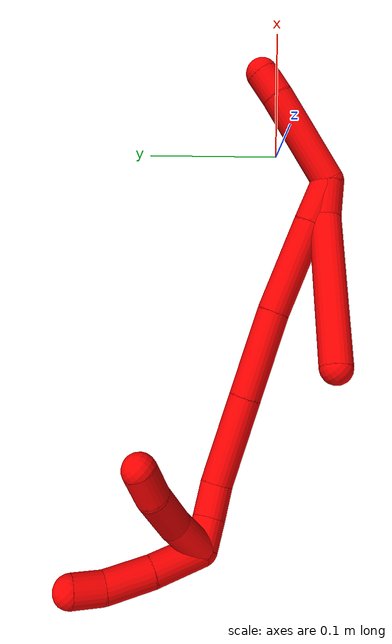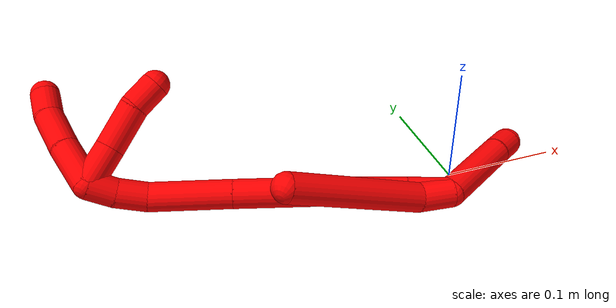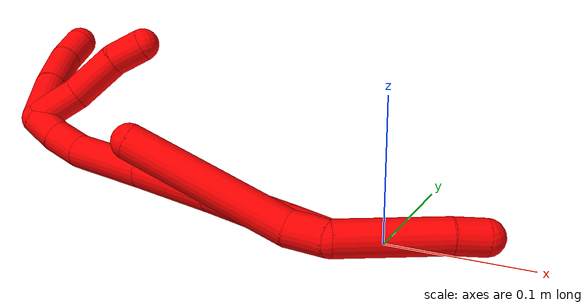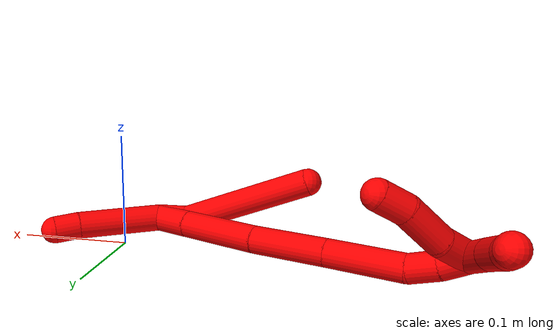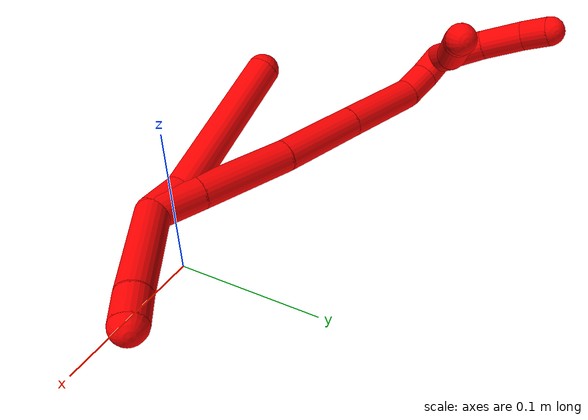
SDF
<sdf version="1.7">
 <world name="default">
  <model name="2">
   <static>0</static>
   <link name="2">
    <collision name="collision-cylinder-e_1_2_8">
     <pose>-0.011062 -0.001858 -0.009084 2.9398 -0.873186 -2.71429</pose>
     <geometry><cylinder><radius>0.0125</radius><length>0.028868</length></cylinder></geometry>
     <surface>
      <friction><ode><mu>1.16</mu><mu2>1.16</mu2><slip1>0</slip1><slip2>0</slip2></ode></friction>
      <contact><ode><kp>1e+06</kp><kd>1</kd><max_vel>0</max_vel><min_depth>0.001</min_depth></ode></contact>
     </surface>
    </collision>
    <visual name="visual-cylinder-e_1_2_8">
     <pose>-0.011062 -0.001858 -0.009084 2.9398 -0.873186 -2.71429</pose>
     <geometry><cylinder><radius>0.0125</radius><length>0.028868</length></cylinder></geometry>
     <material><ambient>1 0 0 1</ambient></material>
    </visual>
    <collision name="collision-cylinder-e_2_8_6">
     <pose>-0.062651 -0.030553 -0.054302 2.50278 -0.733044 -1.71924</pose>
     <geometry><cylinder><radius>0.0125</radius><length>0.121132</length></cylinder></geometry>
     <surface>
      <friction><ode><mu>1.16</mu><mu2>1.16</mu2><slip1>0</slip1><slip2>0</slip2></ode></friction>
      <contact><ode><kp>1e+06</kp><kd>1</kd><max_vel>0</max_vel><min_depth>0.001</min_depth></ode></contact>
     </surface>
    </collision>
    <visual name="visual-cylinder-e_2_8_6">
     <pose>-0.062651 -0.030553 -0.054302 2.50278 -0.733044 -1.71924</pose>
     <geometry><cylinder><radius>0.0125</radius><length>0.121132</length></cylinder></geometry>
     <material><ambient>1 0 0 1</ambient></material>
    </visual>
    <collision name="collision-cylinder-e_1_2_9">
     <pose>0.00976 0.007328 0.036644 -0.197369 0.255463 -0.02543</pose>
     <geometry><cylinder><radius>0.0125</radius><length>0.077247</length></cylinder></geometry>
     <surface>
      <friction><ode><mu>1.16</mu><mu2>1.16</mu2><slip1>0</slip1><slip2>0</slip2></ode></friction>
      <contact><ode><kp>1e+06</kp><kd>1</kd><max_vel>0</max_vel><min_depth>0.001</min_depth></ode></contact>
     </surface>
    </collision>
    <visual name="visual-cylinder-e_1_2_9">
     <pose>0.00976 0.007328 0.036644 -0.197369 0.255463 -0.02543</pose>
     <geometry><cylinder><radius>0.0125</radius><length>0.077247</length></cylinder></geometry>
     <material><ambient>1 0 0 1</ambient></material>
    </visual>
    <collision name="collision-cylinder-e_2_9_5">
     <pose>0.022073 0.017763 0.083931 -0.284122 0.226321 -0.032505</pose>
     <geometry><cylinder><radius>0.0125</radius><length>0.022753</length></cylinder></geometry>
     <surface>
      <friction><ode><mu>1.16</mu><mu2>1.16</mu2><slip1>0</slip1><slip2>0</slip2></ode></friction>
      <contact><ode><kp>1e+06</kp><kd>1</kd><max_vel>0</max_vel><min_depth>0.001</min_depth></ode></contact>
     </surface>
    </collision>
    <visual name="visual-cylinder-e_2_9_5">
     <pose>0.022073 0.017763 0.083931 -0.284122 0.226321 -0.032505</pose>
     <geometry><cylinder><radius>0.0125</radius><length>0.022753</length></cylinder></geometry>
     <material><ambient>1 0 0 1</ambient></material>
    </visual>
    <collision name="collision-cylinder-e_1_2_10">
     <pose>-0.016697 -0.00042 -0.006704 3.07909 -1.1883 -3.04911</pose>
     <geometry><cylinder><radius>0.0125</radius><length>0.035995</length></cylinder></geometry>
     <surface>
      <friction><ode><mu>1.16</mu><mu2>1.16</mu2><slip1>0</slip1><slip2>0</slip2></ode></friction>
      <contact><ode><kp>1e+06</kp><kd>1</kd><max_vel>0</max_vel><min_depth>0.001</min_depth></ode></contact>
     </surface>
    </collision>
    <visual name="visual-cylinder-e_1_2_10">
     <pose>-0.016697 -0.00042 -0.006704 3.07909 -1.1883 -3.04911</pose>
     <geometry><cylinder><radius>0.0125</radius><length>0.035995</length></cylinder></geometry>
     <material><ambient>1 0 0 1</ambient></material>
    </visual>
    <collision name="collision-cylinder-e_2_10_11">
     <pose>-0.067707 -0.001599 -0.028014 3.0896 -1.16789 -3.06294</pose>
     <geometry><cylinder><radius>0.0125</radius><length>0.074601</length></cylinder></geometry>
     <surface>
      <friction><ode><mu>1.16</mu><mu2>1.16</mu2><slip1>0</slip1><slip2>0</slip2></ode></friction>
      <contact><ode><kp>1e+06</kp><kd>1</kd><max_vel>0</max_vel><min_depth>0.001</min_depth></ode></contact>
     </surface>
    </collision>
    <visual name="visual-cylinder-e_2_10_11">
     <pose>-0.067707 -0.001599 -0.028014 3.0896 -1.16789 -3.06294</pose>
     <geometry><cylinder><radius>0.0125</radius><length>0.074601</length></cylinder></geometry>
     <material><ambient>1 0 0 1</ambient></material>
    </visual>
    <collision name="collision-cylinder-e_3_11_12">
     <pose>-0.133025 -0.004132 -0.058188 3.02818 -1.10286 -2.95753</pose>
     <geometry><cylinder><radius>0.0125</radius><length>0.069477</length></cylinder></geometry>
     <surface>
      <friction><ode><mu>1.16</mu><mu2>1.16</mu2><slip1>0</slip1><slip2>0</slip2></ode></friction>
      <contact><ode><kp>1e+06</kp><kd>1</kd><max_vel>0</max_vel><min_depth>0.001</min_depth></ode></contact>
     </surface>
    </collision>
    <visual name="visual-cylinder-e_3_11_12">
     <pose>-0.133025 -0.004132 -0.058188 3.02818 -1.10286 -2.95753</pose>
     <geometry><cylinder><radius>0.0125</radius><length>0.069477</length></cylinder></geometry>
     <material><ambient>1 0 0 1</ambient></material>
    </visual>
    <collision name="collision-cylinder-e_4_12_13">
     <pose>-0.195188 -0.007327 -0.089573 3.05194 -1.09945 -2.99543</pose>
     <geometry><cylinder><radius>0.0125</radius><length>0.069943</length></cylinder></geometry>
     <surface>
      <friction><ode><mu>1.16</mu><mu2>1.16</mu2><slip1>0</slip1><slip2>0</slip2></ode></friction>
      <contact><ode><kp>1e+06</kp><kd>1</kd><max_vel>0</max_vel><min_depth>0.001</min_depth></ode></contact>
     </surface>
    </collision>
    <visual name="visual-cylinder-e_4_12_13">
     <pose>-0.195188 -0.007327 -0.089573 3.05194 -1.09945 -2.99543</pose>
     <geometry><cylinder><radius>0.0125</radius><length>0.069943</length></cylinder></geometry>
     <material><ambient>1 0 0 1</ambient></material>
    </visual>
    <collision name="collision-cylinder-e_5_13_14">
     <pose>-0.237398 -0.012987 -0.111374 2.52548 -0.984952 -2.07109</pose>
     <geometry><cylinder><radius>0.0125</radius><length>0.026526</length></cylinder></geometry>
     <surface>
      <friction><ode><mu>1.16</mu><mu2>1.16</mu2><slip1>0</slip1><slip2>0</slip2></ode></friction>
      <contact><ode><kp>1e+06</kp><kd>1</kd><max_vel>0</max_vel><min_depth>0.001</min_depth></ode></contact>
     </surface>
    </collision>
    <visual name="visual-cylinder-e_5_13_14">
     <pose>-0.237398 -0.012987 -0.111374 2.52548 -0.984952 -2.07109</pose>
     <geometry><cylinder><radius>0.0125</radius><length>0.026526</length></cylinder></geometry>
     <material><ambient>1 0 0 1</ambient></material>
    </visual>
    <collision name="collision-cylinder-e_6_14_1">
     <pose>-0.257897 -0.022744 -0.121582 2.2239 -0.936576 -1.5944</pose>
     <geometry><cylinder><radius>0.0125</radius><length>0.023457</length></cylinder></geometry>
     <surface>
      <friction><ode><mu>1.16</mu><mu2>1.16</mu2><slip1>0</slip1><slip2>0</slip2></ode></friction>
      <contact><ode><kp>1e+06</kp><kd>1</kd><max_vel>0</max_vel><min_depth>0.001</min_depth></ode></contact>
     </surface>
    </collision>
    <visual name="visual-cylinder-e_6_14_1">
     <pose>-0.257897 -0.022744 -0.121582 2.2239 -0.936576 -1.5944</pose>
     <geometry><cylinder><radius>0.0125</radius><length>0.023457</length></cylinder></geometry>
     <material><ambient>1 0 0 1</ambient></material>
    </visual>
    <collision name="collision-cylinder-e_1_1_15">
     <pose>-0.284138 -0.033649 -0.115886 0.497413 -0.979062 -0.268984</pose>
     <geometry><cylinder><radius>0.0125</radius><length>0.040468</length></cylinder></geometry>
     <surface>
      <friction><ode><mu>1.16</mu><mu2>1.16</mu2><slip1>0</slip1><slip2>0</slip2></ode></friction>
      <contact><ode><kp>1e+06</kp><kd>1</kd><max_vel>0</max_vel><min_depth>0.001</min_depth></ode></contact>
     </surface>
    </collision>
    <visual name="visual-cylinder-e_1_1_15">
     <pose>-0.284138 -0.033649 -0.115886 0.497413 -0.979062 -0.268984</pose>
     <geometry><cylinder><radius>0.0125</radius><length>0.040468</length></cylinder></geometry>
     <material><ambient>1 0 0 1</ambient></material>
    </visual>
    <collision name="collision-cylinder-e_2_15_16">
     <pose>-0.315262 -0.043006 -0.095856 0.374281 -0.922156 -0.187589</pose>
     <geometry><cylinder><radius>0.0125</radius><length>0.035965</length></cylinder></geometry>
     <surface>
      <friction><ode><mu>1.16</mu><mu2>1.16</mu2><slip1>0</slip1><slip2>0</slip2></ode></friction>
      <contact><ode><kp>1e+06</kp><kd>1</kd><max_vel>0</max_vel><min_depth>0.001</min_depth></ode></contact>
     </surface>
    </collision>
    <visual name="visual-cylinder-e_2_15_16">
     <pose>-0.315262 -0.043006 -0.095856 0.374281 -0.922156 -0.187589</pose>
     <geometry><cylinder><radius>0.0125</radius><length>0.035965</length></cylinder></geometry>
     <material><ambient>1 0 0 1</ambient></material>
    </visual>
    <collision name="collision-cylinder-e_3_16_4">
     <pose>-0.337239 -0.049529 -0.07715 0.288551 -0.706154 -0.106979</pose>
     <geometry><cylinder><radius>0.0125</radius><length>0.023568</length></cylinder></geometry>
     <surface>
      <friction><ode><mu>1.16</mu><mu2>1.16</mu2><slip1>0</slip1><slip2>0</slip2></ode></friction>
      <contact><ode><kp>1e+06</kp><kd>1</kd><max_vel>0</max_vel><min_depth>0.001</min_depth></ode></contact>
     </surface>
    </collision>
    <visual name="visual-cylinder-e_3_16_4">
     <pose>-0.337239 -0.049529 -0.07715 0.288551 -0.706154 -0.106979</pose>
     <geometry><cylinder><radius>0.0125</radius><length>0.023568</length></cylinder></geometry>
     <material><ambient>1 0 0 1</ambient></material>
    </visual>
    <collision name="collision-cylinder-e_1_1_17">
     <pose>-0.266113 -0.033949 -0.109294 0.331663 0.070387 0.011785</pose>
     <geometry><cylinder><radius>0.0125</radius><length>0.035011</length></cylinder></geometry>
     <surface>
      <friction><ode><mu>1.16</mu><mu2>1.16</mu2><slip1>0</slip1><slip2>0</slip2></ode></friction>
      <contact><ode><kp>1e+06</kp><kd>1</kd><max_vel>0</max_vel><min_depth>0.001</min_depth></ode></contact>
     </surface>
    </collision>
    <visual name="visual-cylinder-e_1_1_17">
     <pose>-0.266113 -0.033949 -0.109294 0.331663 0.070387 0.011785</pose>
     <geometry><cylinder><radius>0.0125</radius><length>0.035011</length></cylinder></geometry>
     <material><ambient>1 0 0 1</ambient></material>
    </visual>
    <collision name="collision-cylinder-e_2_17_18">
     <pose>-0.261006 -0.050122 -0.076464 0.571158 0.197221 0.058077</pose>
     <geometry><cylinder><radius>0.0125</radius><length>0.039564</length></cylinder></geometry>
     <surface>
      <friction><ode><mu>1.16</mu><mu2>1.16</mu2><slip1>0</slip1><slip2>0</slip2></ode></friction>
      <contact><ode><kp>1e+06</kp><kd>1</kd><max_vel>0</max_vel><min_depth>0.001</min_depth></ode></contact>
     </surface>
    </collision>
    <visual name="visual-cylinder-e_2_17_18">
     <pose>-0.261006 -0.050122 -0.076464 0.571158 0.197221 0.058077</pose>
     <geometry><cylinder><radius>0.0125</radius><length>0.039564</length></cylinder></geometry>
     <material><ambient>1 0 0 1</ambient></material>
    </visual>
    <collision name="collision-cylinder-e_3_18_3">
     <pose>-0.253019 -0.064763 -0.048855 0.352513 0.329266 0.059162</pose>
     <geometry><cylinder><radius>0.0125</radius><length>0.025425</length></cylinder></geometry>
     <surface>
      <friction><ode><mu>1.16</mu><mu2>1.16</mu2><slip1>0</slip1><slip2>0</slip2></ode></friction>
      <contact><ode><kp>1e+06</kp><kd>1</kd><max_vel>0</max_vel><min_depth>0.001</min_depth></ode></contact>
     </surface>
    </collision>
    <visual name="visual-cylinder-e_3_18_3">
     <pose>-0.253019 -0.064763 -0.048855 0.352513 0.329266 0.059162</pose>
     <geometry><cylinder><radius>0.0125</radius><length>0.025425</length></cylinder></geometry>
     <material><ambient>1 0 0 1</ambient></material>
    </visual>
    <collision name="collision-sphere-3">
     <pose>-0.248909 -0.068916 -0.037565 0 -0 0</pose>
     <geometry><sphere><radius>0.0125</radius></sphere></geometry>
     <surface>
      <friction><ode><mu>1.16</mu><mu2>1.16</mu2><slip1>0</slip1><slip2>0</slip2></ode></friction>
      <contact><ode><kp>1e+06</kp><kd>1</kd><max_vel>0</max_vel><min_depth>0.001</min_depth></ode></contact>
     </surface>
    </collision>
    <visual name="visual-sphere-3">
     <pose>-0.248909 -0.068916 -0.037565 0 -0 0</pose>
     <geometry><sphere><radius>0.0125</radius></sphere></geometry>
     <material><ambient>1 0 0 1</ambient></material>
    </visual>
    <collision name="collision-sphere-10">
     <pose>-0.033394 -0.000839 -0.013409 0 -0 0</pose>
     <geometry><sphere><radius>0.0125</radius></sphere></geometry>
     <surface>
      <friction><ode><mu>1.16</mu><mu2>1.16</mu2><slip1>0</slip1><slip2>0</slip2></ode></friction>
      <contact><ode><kp>1e+06</kp><kd>1</kd><max_vel>0</max_vel><min_depth>0.001</min_depth></ode></contact>
     </surface>
    </collision>
    <visual name="visual-sphere-10">
     <pose>-0.033394 -0.000839 -0.013409 0 -0 0</pose>
     <geometry><sphere><radius>0.0125</radius></sphere></geometry>
     <material><ambient>1 0 0 1</ambient></material>
    </visual>
    <collision name="collision-sphere-5">
     <pose>0.024625 0.020871 0.094573 0 -0 0</pose>
     <geometry><sphere><radius>0.0125</radius></sphere></geometry>
     <surface>
      <friction><ode><mu>1.16</mu><mu2>1.16</mu2><slip1>0</slip1><slip2>0</slip2></ode></friction>
      <contact><ode><kp>1e+06</kp><kd>1</kd><max_vel>0</max_vel><min_depth>0.001</min_depth></ode></contact>
     </surface>
    </collision>
    <visual name="visual-sphere-5">
     <pose>0.024625 0.020871 0.094573 0 -0 0</pose>
     <geometry><sphere><radius>0.0125</radius></sphere></geometry>
     <material><ambient>1 0 0 1</ambient></material>
    </visual>
    <collision name="collision-sphere-6">
     <pose>-0.103178 -0.05739 -0.090435 0 -0 0</pose>
     <geometry><sphere><radius>0.0125</radius></sphere></geometry>
     <surface>
      <friction><ode><mu>1.16</mu><mu2>1.16</mu2><slip1>0</slip1><slip2>0</slip2></ode></friction>
      <contact><ode><kp>1e+06</kp><kd>1</kd><max_vel>0</max_vel><min_depth>0.001</min_depth></ode></contact>
     </surface>
    </collision>
    <visual name="visual-sphere-6">
     <pose>-0.103178 -0.05739 -0.090435 0 -0 0</pose>
     <geometry><sphere><radius>0.0125</radius></sphere></geometry>
     <material><ambient>1 0 0 1</ambient></material>
    </visual>
    <collision name="collision-sphere-9">
     <pose>0.01952 0.014656 0.073289 0 -0 0</pose>
     <geometry><sphere><radius>0.0125</radius></sphere></geometry>
     <surface>
      <friction><ode><mu>1.16</mu><mu2>1.16</mu2><slip1>0</slip1><slip2>0</slip2></ode></friction>
      <contact><ode><kp>1e+06</kp><kd>1</kd><max_vel>0</max_vel><min_depth>0.001</min_depth></ode></contact>
     </surface>
    </collision>
    <visual name="visual-sphere-9">
     <pose>0.01952 0.014656 0.073289 0 -0 0</pose>
     <geometry><sphere><radius>0.0125</radius></sphere></geometry>
     <material><ambient>1 0 0 1</ambient></material>
    </visual>
    <collision name="collision-sphere-2">
     <geometry><sphere><radius>0.0125</radius></sphere></geometry>
     <surface>
      <friction><ode><mu>1.16</mu><mu2>1.16</mu2><slip1>0</slip1><slip2>0</slip2></ode></friction>
      <contact><ode><kp>1e+06</kp><kd>1</kd><max_vel>0</max_vel><min_depth>0.001</min_depth></ode></contact>
     </surface>
    </collision>
    <visual name="visual-sphere-2">
     <geometry><sphere><radius>0.0125</radius></sphere></geometry>
     <material><ambient>1 0 0 1</ambient></material>
    </visual>
    <collision name="collision-sphere-8">
     <pose>-0.022124 -0.003717 -0.018168 0 -0 0</pose>
     <geometry><sphere><radius>0.0125</radius></sphere></geometry>
     <surface>
      <friction><ode><mu>1.16</mu><mu2>1.16</mu2><slip1>0</slip1><slip2>0</slip2></ode></friction>
      <contact><ode><kp>1e+06</kp><kd>1</kd><max_vel>0</max_vel><min_depth>0.001</min_depth></ode></contact>
     </surface>
    </collision>
    <visual name="visual-sphere-8">
     <pose>-0.022124 -0.003717 -0.018168 0 -0 0</pose>
     <geometry><sphere><radius>0.0125</radius></sphere></geometry>
     <material><ambient>1 0 0 1</ambient></material>
    </visual>
    <collision name="collision-sphere-11">
     <pose>-0.102021 -0.002359 -0.04262 0 -0 0</pose>
     <geometry><sphere><radius>0.0125</radius></sphere></geometry>
     <surface>
      <friction><ode><mu>1.16</mu><mu2>1.16</mu2><slip1>0</slip1><slip2>0</slip2></ode></friction>
      <contact><ode><kp>1e+06</kp><kd>1</kd><max_vel>0</max_vel><min_depth>0.001</min_depth></ode></contact>
     </surface>
    </collision>
    <visual name="visual-sphere-11">
     <pose>-0.102021 -0.002359 -0.04262 0 -0 0</pose>
     <geometry><sphere><radius>0.0125</radius></sphere></geometry>
     <material><ambient>1 0 0 1</ambient></material>
    </visual>
    <collision name="collision-sphere-12">
     <pose>-0.16403 -0.005906 -0.073756 0 -0 0</pose>
     <geometry><sphere><radius>0.0125</radius></sphere></geometry>
     <surface>
      <friction><ode><mu>1.16</mu><mu2>1.16</mu2><slip1>0</slip1><slip2>0</slip2></ode></friction>
      <contact><ode><kp>1e+06</kp><kd>1</kd><max_vel>0</max_vel><min_depth>0.001</min_depth></ode></contact>
     </surface>
    </collision>
    <visual name="visual-sphere-12">
     <pose>-0.16403 -0.005906 -0.073756 0 -0 0</pose>
     <geometry><sphere><radius>0.0125</radius></sphere></geometry>
     <material><ambient>1 0 0 1</ambient></material>
    </visual>
    <collision name="collision-sphere-13">
     <pose>-0.226346 -0.008749 -0.105389 0 -0 0</pose>
     <geometry><sphere><radius>0.0125</radius></sphere></geometry>
     <surface>
      <friction><ode><mu>1.16</mu><mu2>1.16</mu2><slip1>0</slip1><slip2>0</slip2></ode></friction>
      <contact><ode><kp>1e+06</kp><kd>1</kd><max_vel>0</max_vel><min_depth>0.001</min_depth></ode></contact>
     </surface>
    </collision>
    <visual name="visual-sphere-13">
     <pose>-0.226346 -0.008749 -0.105389 0 -0 0</pose>
     <geometry><sphere><radius>0.0125</radius></sphere></geometry>
     <material><ambient>1 0 0 1</ambient></material>
    </visual>
    <collision name="collision-sphere-14">
     <pose>-0.248449 -0.017225 -0.117359 0 -0 0</pose>
     <geometry><sphere><radius>0.0125</radius></sphere></geometry>
     <surface>
      <friction><ode><mu>1.16</mu><mu2>1.16</mu2><slip1>0</slip1><slip2>0</slip2></ode></friction>
      <contact><ode><kp>1e+06</kp><kd>1</kd><max_vel>0</max_vel><min_depth>0.001</min_depth></ode></contact>
     </surface>
    </collision>
    <visual name="visual-sphere-14">
     <pose>-0.248449 -0.017225 -0.117359 0 -0 0</pose>
     <geometry><sphere><radius>0.0125</radius></sphere></geometry>
     <material><ambient>1 0 0 1</ambient></material>
    </visual>
    <collision name="collision-sphere-1">
     <pose>-0.267344 -0.028264 -0.125805 0 -0 0</pose>
     <geometry><sphere><radius>0.0125</radius></sphere></geometry>
     <surface>
      <friction><ode><mu>1.16</mu><mu2>1.16</mu2><slip1>0</slip1><slip2>0</slip2></ode></friction>
      <contact><ode><kp>1e+06</kp><kd>1</kd><max_vel>0</max_vel><min_depth>0.001</min_depth></ode></contact>
     </surface>
    </collision>
    <visual name="visual-sphere-1">
     <pose>-0.267344 -0.028264 -0.125805 0 -0 0</pose>
     <geometry><sphere><radius>0.0125</radius></sphere></geometry>
     <material><ambient>1 0 0 1</ambient></material>
    </visual>
    <collision name="collision-sphere-18">
     <pose>-0.25713 -0.060609 -0.060145 0 -0 0</pose>
     <geometry><sphere><radius>0.0125</radius></sphere></geometry>
     <surface>
      <friction><ode><mu>1.16</mu><mu2>1.16</mu2><slip1>0</slip1><slip2>0</slip2></ode></friction>
      <contact><ode><kp>1e+06</kp><kd>1</kd><max_vel>0</max_vel><min_depth>0.001</min_depth></ode></contact>
     </surface>
    </collision>
    <visual name="visual-sphere-18">
     <pose>-0.25713 -0.060609 -0.060145 0 -0 0</pose>
     <geometry><sphere><radius>0.0125</radius></sphere></geometry>
     <material><ambient>1 0 0 1</ambient></material>
    </visual>
    <collision name="collision-sphere-15">
     <pose>-0.300932 -0.039034 -0.105967 0 -0 0</pose>
     <geometry><sphere><radius>0.0125</radius></sphere></geometry>
     <surface>
      <friction><ode><mu>1.16</mu><mu2>1.16</mu2><slip1>0</slip1><slip2>0</slip2></ode></friction>
      <contact><ode><kp>1e+06</kp><kd>1</kd><max_vel>0</max_vel><min_depth>0.001</min_depth></ode></contact>
     </surface>
    </collision>
    <visual name="visual-sphere-15">
     <pose>-0.300932 -0.039034 -0.105967 0 -0 0</pose>
     <geometry><sphere><radius>0.0125</radius></sphere></geometry>
     <material><ambient>1 0 0 1</ambient></material>
    </visual>
    <collision name="collision-sphere-16">
     <pose>-0.329592 -0.046977 -0.085745 0 -0 0</pose>
     <geometry><sphere><radius>0.0125</radius></sphere></geometry>
     <surface>
      <friction><ode><mu>1.16</mu><mu2>1.16</mu2><slip1>0</slip1><slip2>0</slip2></ode></friction>
      <contact><ode><kp>1e+06</kp><kd>1</kd><max_vel>0</max_vel><min_depth>0.001</min_depth></ode></contact>
     </surface>
    </collision>
    <visual name="visual-sphere-16">
     <pose>-0.329592 -0.046977 -0.085745 0 -0 0</pose>
     <geometry><sphere><radius>0.0125</radius></sphere></geometry>
     <material><ambient>1 0 0 1</ambient></material>
    </visual>
    <collision name="collision-sphere-4">
     <pose>-0.344885 -0.05208 -0.068555 0 -0 0</pose>
     <geometry><sphere><radius>0.0125</radius></sphere></geometry>
     <surface>
      <friction><ode><mu>1.16</mu><mu2>1.16</mu2><slip1>0</slip1><slip2>0</slip2></ode></friction>
      <contact><ode><kp>1e+06</kp><kd>1</kd><max_vel>0</max_vel><min_depth>0.001</min_depth></ode></contact>
     </surface>
    </collision>
    <visual name="visual-sphere-4">
     <pose>-0.344885 -0.05208 -0.068555 0 -0 0</pose>
     <geometry><sphere><radius>0.0125</radius></sphere></geometry>
     <material><ambient>1 0 0 1</ambient></material>
    </visual>
    <collision name="collision-sphere-17">
     <pose>-0.264882 -0.039635 -0.092784 0 -0 0</pose>
     <geometry><sphere><radius>0.0125</radius></sphere></geometry>
     <surface>
      <friction><ode><mu>1.16</mu><mu2>1.16</mu2><slip1>0</slip1><slip2>0</slip2></ode></friction>
      <contact><ode><kp>1e+06</kp><kd>1</kd><max_vel>0</max_vel><min_depth>0.001</min_depth></ode></contact>
     </surface>
    </collision>
    <visual name="visual-sphere-17">
     <pose>-0.264882 -0.039635 -0.092784 0 -0 0</pose>
     <geometry><sphere><radius>0.0125</radius></sphere></geometry>
     <material><ambient>1 0 0 1</ambient></material>
    </visual>
    <inertial>
     <pose>-0.139208 -0.017987 -0.051459 0 -0 0</pose>
     <mass>0.75</mass>
     <inertia>
      <ixx>-0.000155</ixx>
      <ixy>0</ixy>
      <ixz>0</ixz>
      <iyy>0.000124</iyy>
      <iyz>0</iyz>
      <izz>0.000278</izz>
     </inertia>
    </inertial>
   </link>
   <pose>-0.021197 -0.03934 0.015022 -1.38115 0.03485 -0.77432</pose>
  </model>
 </world>
</sdf>
